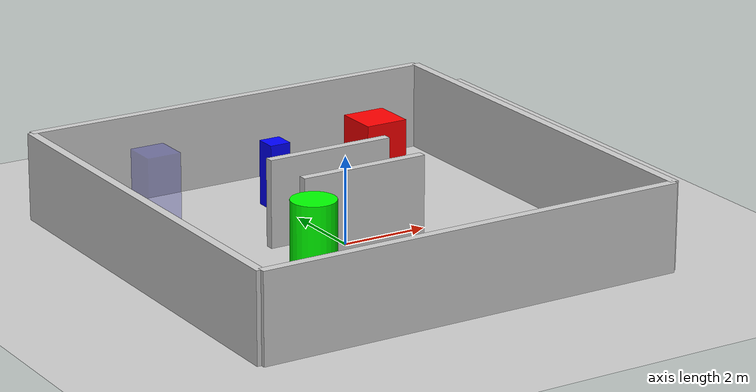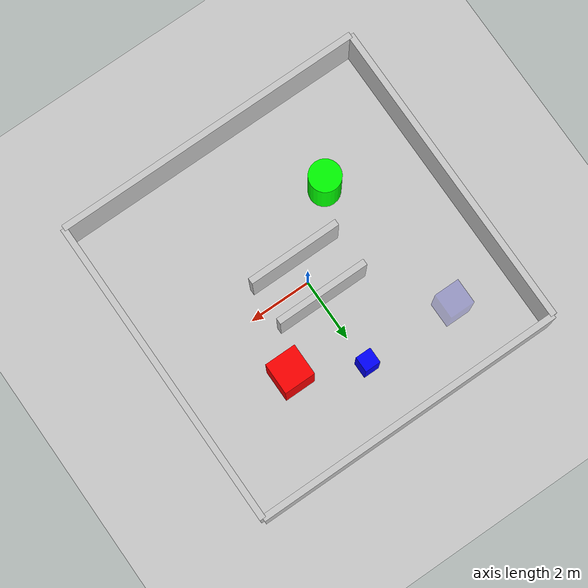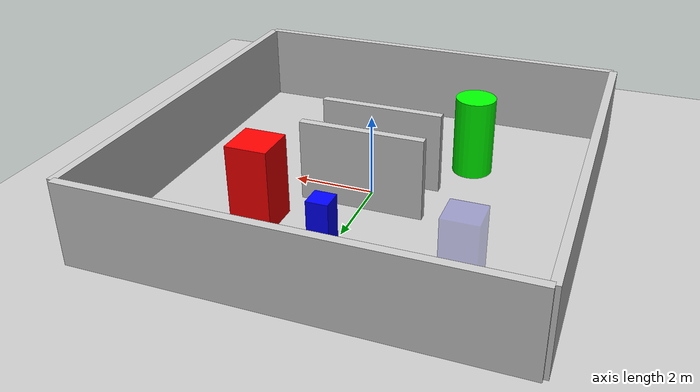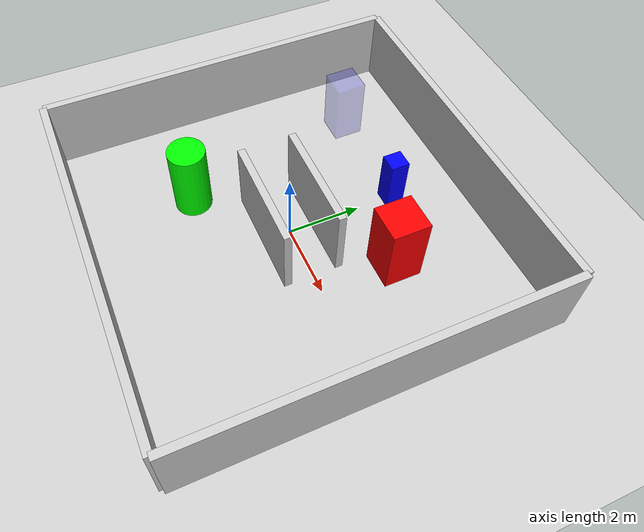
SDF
<?xml version="1.0" ?>
<sdf version="1.5">
  <world name="default">
    <!-- 基本物理属性和渲染器 -->
    <physics type="ode">
      <max_step_size>0.001</max_step_size>
      <real_time_factor>1</real_time_factor>
      <real_time_update_rate>1000</real_time_update_rate>
      <gravity>0 0 -9.8</gravity>
    </physics>

    <!-- 包含必要模型 -->
    <include>
      <uri>model://sun</uri>
    </include>

    <include>
      <uri>model://ground_plane</uri>
    </include>

    <!-- 墙壁 -->
    <model name="wall1">
      <static>true</static>
      <link name="link">
        <collision name="collision">
          <geometry>
            <box>
              <size>10 0.2 2</size>
            </box>
          </geometry>
        </collision>
        <visual name="visual">
          <geometry>
            <box>
              <size>10 0.2 2</size>
            </box>
          </geometry>
          <material>
            <ambient>0.8 0.8 0.8 1</ambient>
            <diffuse>0.8 0.8 0.8 1</diffuse>
          </material>
        </visual>
      </link>
      <pose>0 5 1 0 0 0</pose>
    </model>

    <model name="wall2">
      <static>true</static>
      <link name="link">
        <collision name="collision">
          <geometry>
            <box>
              <size>10 0.2 2</size>
            </box>
          </geometry>
        </collision>
        <visual name="visual">
          <geometry>
            <box>
              <size>10 0.2 2</size>
            </box>
          </geometry>
          <material>
            <ambient>0.8 0.8 0.8 1</ambient>
            <diffuse>0.8 0.8 0.8 1</diffuse>
          </material>
        </visual>
      </link>
      <pose>0 -5 1 0 0 0</pose>
    </model>

    <model name="wall3">
      <static>true</static>
      <link name="link">
        <collision name="collision">
          <geometry>
            <box>
              <size>0.2 10 2</size>
            </box>
          </geometry>
        </collision>
        <visual name="visual">
          <geometry>
            <box>
              <size>0.2 10 2</size>
            </box>
          </geometry>
          <material>
            <ambient>0.8 0.8 0.8 1</ambient>
            <diffuse>0.8 0.8 0.8 1</diffuse>
          </material>
        </visual>
      </link>
      <pose>5 0 1 0 0 0</pose>
    </model>

    <model name="wall4">
      <static>true</static>
      <link name="link">
        <collision name="collision">
          <geometry>
            <box>
              <size>0.2 10 2</size>
            </box>
          </geometry>
        </collision>
        <visual name="visual">
          <geometry>
            <box>
              <size>0.2 10 2</size>
            </box>
          </geometry>
          <material>
            <ambient>0.8 0.8 0.8 1</ambient>
            <diffuse>0.8 0.8 0.8 1</diffuse>
          </material>
        </visual>
      </link>
      <pose>-5 0 1 0 0 0</pose>
    </model>

    <!-- 障碍物 -->
    <!-- 静态障碍物 -->
    <model name="box1">
      <static>true</static>
      <link name="link">
        <collision name="collision">
          <geometry>
            <box>
              <size>1 1 2</size>
            </box>
          </geometry>
        </collision>
        <visual name="visual">
          <geometry>
            <box>
              <size>1 1 2</size>
            </box>
          </geometry>
          <material>
            <ambient>1 0 0 1</ambient>
            <diffuse>1 0 0 1</diffuse>
          </material>
        </visual>
      </link>
      <pose>2 2 1 0 0 0</pose>
    </model>

    <model name="cylinder1">
      <static>true</static>
      <link name="link">
        <collision name="collision">
          <geometry>
            <cylinder>
              <radius>0.5</radius>
              <length>2</length>
            </cylinder>
          </geometry>
        </collision>
        <visual name="visual">
          <geometry>
            <cylinder>
              <radius>0.5</radius>
              <length>2</length>
            </cylinder>
          </geometry>
          <material>
            <ambient>0 1 0 1</ambient>
            <diffuse>0 1 0 1</diffuse>
          </material>
        </visual>
      </link>
      <pose>-2 -2 1 0 0 0</pose>
    </model>

    <!-- 动态障碍物 -->
    <model name="moving_box">
      <link name="link">
        <collision name="collision">
          <geometry>
            <box>
              <size>0.5 0.5 1.5</size>
            </box>
          </geometry>
        </collision>
        <visual name="visual">
          <geometry>
            <box>
              <size>0.5 0.5 1.5</size>
            </box>
          </geometry>
          <material>
            <ambient>0 0 1 1</ambient>
            <diffuse>0 0 1 1</diffuse>
          </material>
        </visual>
        <inertial>
          <mass>10</mass>
          <inertia>
            <ixx>1</ixx>
            <ixy>0</ixy>
            <ixz>0</ixz>
            <iyy>1</iyy>
            <iyz>0</iyz>
            <izz>1</izz>
          </inertia>
        </inertial>
      </link>
      <pose>0 3 0.75 0 0 0</pose>

      <!-- 添加运动插件 -->
      <plugin name="move_box" filename="libgazebo_ros_force.so">
        <bodyName>link</bodyName>
        <topicName>box_force</topicName>
      </plugin>
    </model>

    <!-- 窄通道 -->
    <model name="narrow_passage1">
      <static>true</static>
      <link name="link">
        <collision name="collision">
          <geometry>
            <box>
              <size>3 0.2 2</size>
            </box>
          </geometry>
        </collision>
        <visual name="visual">
          <geometry>
            <box>
              <size>3 0.2 2</size>
            </box>
          </geometry>
          <material>
            <ambient>0.8 0.8 0.8 1</ambient>
            <diffuse>0.8 0.8 0.8 1</diffuse>
          </material>
        </visual>
      </link>
      <pose>0 0.7 1 0 0 0</pose>
    </model>

    <model name="narrow_passage2">
      <static>true</static>
      <link name="link">
        <collision name="collision">
          <geometry>
            <box>
              <size>3 0.2 2</size>
            </box>
          </geometry>
        </collision>
        <visual name="visual">
          <geometry>
            <box>
              <size>3 0.2 2</size>
            </box>
          </geometry>
          <material>
            <ambient>0.8 0.8 0.8 1</ambient>
            <diffuse>0.8 0.8 0.8 1</diffuse>
          </material>
        </visual>
      </link>
      <pose>0 -0.7 1 0 0 0</pose>
    </model>

    <!-- 透明障碍物 -->
    <model name="transparent_obstacle">
      <static>true</static>
      <link name="link">
        <collision name="collision">
          <geometry>
            <box>
              <size>0.8 0.8 1.8</size>
            </box>
          </geometry>
        </collision>
        <visual name="visual">
          <geometry>
            <box>
              <size>0.8 0.8 1.8</size>
            </box>
          </geometry>
          <material>
            <ambient>0.2 0.2 0.8 0.3</ambient>
            <diffuse>0.2 0.2 0.8 0.3</diffuse>
            <transparency>0.7</transparency>
          </material>
        </visual>
      </link>
      <pose>-3 3 0.9 0 0 0</pose>
    </model>

  </world>
</sdf>
